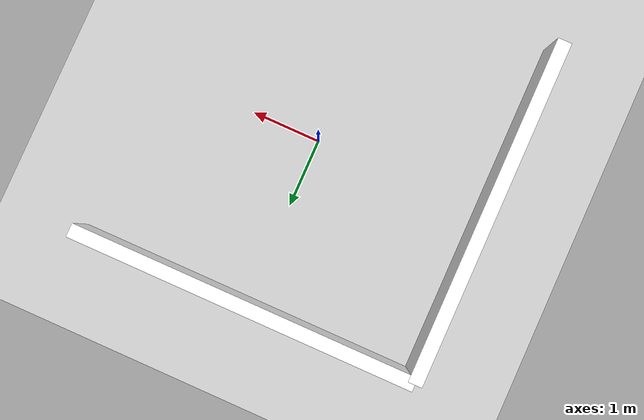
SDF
<?xml version="1.0" ?>
<sdf version="1.5">
  <world name="default">

    <include>
      <uri>model://ground_plane</uri>
    </include>

    <include>
      <uri>model://sun</uri>
    </include>

    <!-- FRONT WALL -->
    <model name="wall_front">
      <static>true</static>
      <pose>0 2.5 0.3 0 0 0</pose>
      <link name="link">
        <collision name="collision">
          <geometry><box><size>5 0.2 0.6</size></box></geometry>
        </collision>
        <visual name="visual">
          <geometry><box><size>5 0.2 0.6</size></box></geometry>
          <material>
          <ambient>1 1 1 1</ambient>
          <diffuse>1 1 1 1</diffuse>
        </material>
        </visual>
      </link>
    </model>

   <!-- BACK WALL -->

    <!-- LEFT WALL -->
    <model name="wall_left">
      <static>true</static>
      <pose>-2.5 0 0.3 0 0 0</pose>
      <link name="link">
        <collision name="collision">
          <geometry><box><size>0.2 5 0.6</size></box></geometry>
        </collision>
        <visual name="visual">
          <geometry><box><size>0.2 5 0.6</size></box></geometry>
          <material>
          <ambient>1 1 1 1</ambient>
          <diffuse>1 1 1 1</diffuse>
        </material>
        </visual>
      </link>
    </model>

    <!-- RIGHT WALL -->

  </world>
</sdf>
